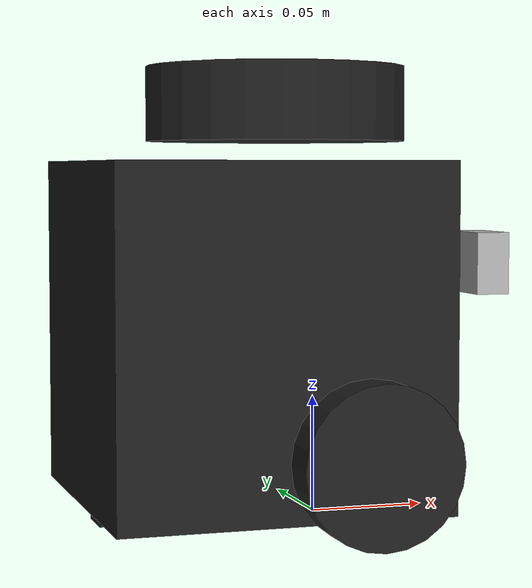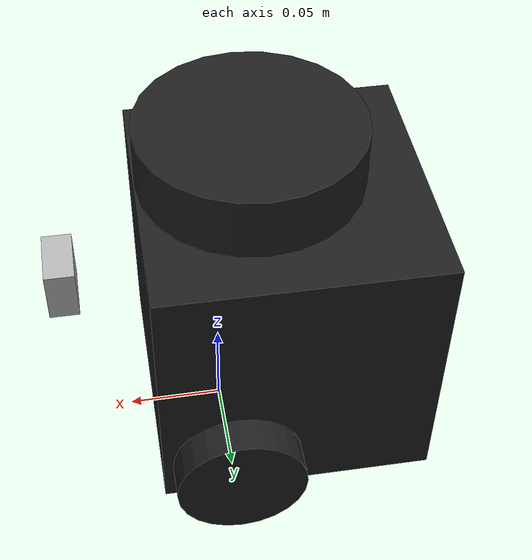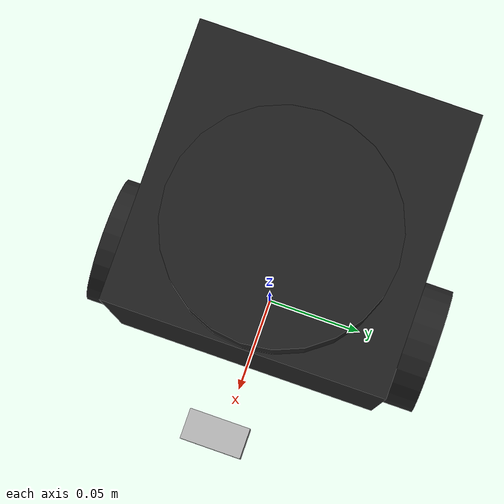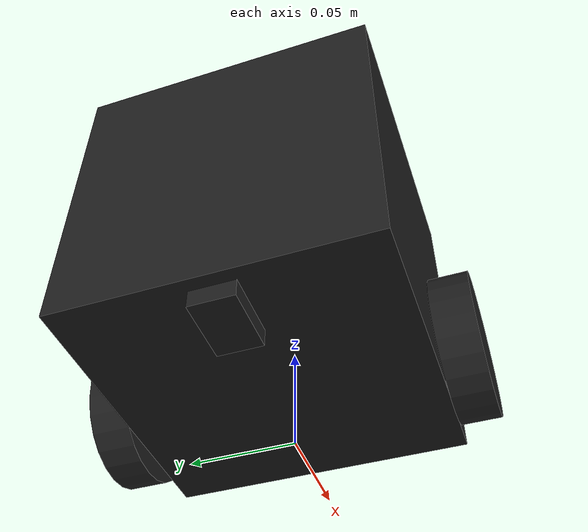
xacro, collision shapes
<?xml version="1.0" ?>
<robot name="turtlebot3_burger" xmlns:xacro="http://ros.org/wiki/xacro">
  <!--xacro:property name="hokuyo" value="false"/-->
  <xacro:include filename="$(find turtlebot3_description)/urdf/common_properties.xacro"/>
  <xacro:include filename="$(find turtlebot3_description)/urdf/turtlebot3_burger.gazebo.xacro"/>

  <link name="base_footprint"/>

  <joint name="base_joint" type="fixed">
    <parent link="base_footprint"/>
    <child link="base_link"/>
    <origin xyz="0.0 0.0 0.010" rpy="0 0 0"/>
  </joint>

  <link name="base_link">
    <visual>
      <origin xyz="-0.032 0 0.0" rpy="0 0 0"/>
      <geometry>
        <mesh filename="package://turtlebot3_description/meshes/bases/burger_base.stl" scale="0.001 0.001 0.001"/>
      </geometry>
      <material name="light_black"/>
    </visual>

    <collision>
      <origin xyz="-0.032 0 0.070" rpy="0 0 0"/>
      <geometry>
        <box size="0.140 0.140 0.143"/>
      </geometry>
    </collision>

    <inertial>
      <origin xyz="0 0 0" rpy="0 0 0"/>
      <mass value="8.2573504e-01"/>
      <inertia ixx="2.2124416e-03" ixy="-1.2294101e-05" ixz="3.4938785e-05"
               iyy="2.1193702e-03" iyz="-5.0120904e-06"
               izz="2.0064271e-03" />
    </inertial>
  </link>

  <joint name="wheel_left_joint" type="continuous">
    <parent link="base_link"/>
    <child link="wheel_left_link"/>
    <origin xyz="0.0 0.08 0.023" rpy="-1.57 0 0"/>
    <axis xyz="0 0 1"/>
  </joint>

  <link name="wheel_left_link">
    <visual>
      <origin xyz="0 0 0" rpy="1.57 0 0"/>
      <geometry>
        <mesh filename="package://turtlebot3_description/meshes/wheels/left_tire.stl" scale="0.001 0.001 0.001"/>
      </geometry>
      <material name="dark"/>
    </visual>

    <collision>
      <origin xyz="0 0 0" rpy="0 0 0"/>
      <geometry>
        <cylinder length="0.018" radius="0.033"/>
      </geometry>
    </collision>

    <inertial>
      <origin xyz="0 0 0" />
      <mass value="2.8498940e-02" />
      <inertia ixx="1.1175580e-05" ixy="-4.2369783e-11" ixz="-5.9381719e-09"
               iyy="1.1192413e-05" iyz="-1.4400107e-11"
               izz="2.0712558e-05" />
      </inertial>
  </link>

  <joint name="wheel_right_joint" type="continuous">
    <parent link="base_link"/>
    <child link="wheel_right_link"/>
    <origin xyz="0.0 -0.080 0.023" rpy="-1.57 0 0"/>
    <axis xyz="0 0 1"/>
  </joint>

  <link name="wheel_right_link">
    <visual>
      <origin xyz="0 0 0" rpy="1.57 0 0"/>
      <geometry>
        <mesh filename="package://turtlebot3_description/meshes/wheels/right_tire.stl" scale="0.001 0.001 0.001"/>
      </geometry>
      <material name="dark"/>
    </visual>

    <collision>
      <origin xyz="0 0 0" rpy="0 0 0"/>
      <geometry>
        <cylinder length="0.018" radius="0.033"/>
      </geometry>
    </collision>

    <inertial>
      <origin xyz="0 0 0" />
      <mass value="2.8498940e-02" />
      <inertia ixx="1.1175580e-05" ixy="-4.2369783e-11" ixz="-5.9381719e-09"
               iyy="1.1192413e-05" iyz="-1.4400107e-11"
               izz="2.0712558e-05" />
      </inertial>
  </link>

  <joint name="caster_back_joint" type="fixed">
    <parent link="base_link"/>
    <child link="caster_back_link"/>
    <origin xyz="-0.081 0 -0.004" rpy="-1.57 0 0"/>
  </joint>

  <link name="caster_back_link">
    <collision>
      <origin xyz="0 0.001 0" rpy="0 0 0"/>
      <geometry>
        <box size="0.030 0.009 0.020"/>
      </geometry>
    </collision>

    <inertial>
      <origin xyz="0 0 0" />
      <mass value="0.005" />
      <inertia ixx="0.001" ixy="0.0" ixz="0.0"
               iyy="0.001" iyz="0.0"
               izz="0.001" />
    </inertial>
  </link>

  <joint name="imu_joint" type="fixed">
    <parent link="base_link"/>
    <child link="imu_link"/>
    <origin xyz="-0.032 0 0.068" rpy="0 0 0"/>
  </joint>

  <link name="imu_link"/>

  <xacro:if value="${hokuyo == 1}">
    <joint name="scan_joint" type="fixed">
      <parent link="base_link"/>
      <child link="base_scan"/>
      <origin xyz="-0.032 0 0.140" rpy="0 0 0"/>
    </joint>

    <link name="base_scan">
      <visual>
        <origin xyz="0 0 0.0" rpy="0 0 0"/>
        <geometry>
          <mesh filename="package://turtlebot3_description/meshes/sensors/hokuyo3d.stl"/> <!--scale="0.001 0.001 0.001"/-->
        </geometry>
        <material name="dark"/>
      </visual>

      <collision>
        <origin xyz="0.015 0 -0.0065" rpy="0 0 0"/>
        <geometry>
          <box size="0.05 0.05 0.08"/>
        </geometry>
      </collision>

      <inertial>
        <mass value="0.00001" />
        <origin xyz="0 0 0" />
        <inertia ixx="0.000001" ixy="0.0" ixz="0.0"
                 iyy="0.000001" iyz="0.0"
                 izz="0.000001" />
      </inertial>
    </link>
  </xacro:if>>

  <xacro:if value="${hokuyo == 0}">
    <joint name="scan_joint" type="fixed">
      <parent link="base_link"/>
      <child link="base_scan"/>
      <origin xyz="-0.032 0 0.172" rpy="0 0 0"/>
    </joint>

    <link name="base_scan">
      <visual>
        <origin xyz="0 0 0.0" rpy="0 0 0"/>
        <geometry>
          <mesh filename="package://turtlebot3_description/meshes/sensors/lds.stl" scale="0.001 0.001 0.001"/>
        </geometry>
        <material name="dark"/>
      </visual>

      <collision>
        <origin xyz="0.015 0 -0.0065" rpy="0 0 0"/>
        <geometry>
          <cylinder length="0.0315" radius="0.055"/>
        </geometry>
      </collision>

      <inertial>
        <mass value="0.114" />
        <origin xyz="0 0 0" />
        <inertia ixx="0.001" ixy="0.0" ixz="0.0"
                 iyy="0.001" iyz="0.0"
                 izz="0.001" />
      </inertial>
    </link>
  </xacro:if>

<joint name="camera_joint" type="fixed">
    <origin xyz="0.073 -0.011 0.084" rpy="0 0 0"/>
    <parent link="base_link"/>
    <child link="camera_link"/>
  </joint>

  <link name="camera_link">
    <collision>
      <origin xyz="0.005 0.011 0.013" rpy="0 0 0"/>
      <geometry>
        <box size="0.015 0.030 0.027"/>
      </geometry>
    </collision>
  </link>

  <joint name="camera_rgb_joint" type="fixed">
    <origin xyz="0.003 0.011 0.009" rpy="0 0 0"/>
    <parent link="camera_link"/>
    <child link="camera_rgb_frame"/>
  </joint>
  <link name="camera_rgb_frame"/>

  <joint name="camera_rgb_optical_joint" type="fixed">
    <origin xyz="0 0 0" rpy="-1.57 0 -1.57"/>
    <parent link="camera_rgb_frame"/>
    <child link="camera_rgb_optical_frame"/>
  </joint>
  <link name="camera_rgb_optical_frame"/>

</robot>

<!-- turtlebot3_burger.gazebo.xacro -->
<robot name="turtlebot3_burger_sim" xmlns:xacro="http://ros.org/wiki/xacro">
  <xacro:arg name="laser_visual" default="true"/>
  <xacro:arg name="camera_visual" default="false"/>
  <xacro:arg name="imu_visual"   default="false"/>
  <xacro:arg name="is_using_hokuyo" default="0"/>

  <xacro:property name="hokuyo" value="$(arg is_using_hokuyo)"/>

  <gazebo reference="base_link">
    <material>Gazebo/DarkGrey</material>
  </gazebo>

  <gazebo reference="wheel_left_link">
    <mu1>0.1</mu1>
    <mu2>0.1</mu2>
    <kp>500000.0</kp>
    <kd>10.0</kd>
    <minDepth>0.001</minDepth>
    <maxVel>0.1</maxVel>
    <fdir1>1 0 0</fdir1>
    <material>Gazebo/FlatBlack</material>
  </gazebo>

  <gazebo reference="wheel_right_link">
    <mu1>0.1</mu1>
    <mu2>0.1</mu2>
    <kp>500000.0</kp>
    <kd>10.0</kd>
    <minDepth>0.001</minDepth>
    <maxVel>0.1</maxVel>
    <fdir1>1 0 0</fdir1>
    <material>Gazebo/FlatBlack</material>
  </gazebo>

  <gazebo reference="caster_back_link">
    <mu1>0.1</mu1>
    <mu2>0.1</mu2>
    <kp>1000000.0</kp>
    <kd>100.0</kd>
    <minDepth>0.001</minDepth>
    <maxVel>1.0</maxVel>
    <material>Gazebo/FlatBlack</material>
  </gazebo>

  <gazebo reference="imu_link">
    <sensor type="imu" name="imu">
      <always_on>true</always_on>
      <visualize>$(arg imu_visual)</visualize>
    </sensor>
    <material>Gazebo/FlatBlack</material>
  </gazebo>

  <gazebo>
    <plugin name="turtlebot3_burger_controller" filename="libgazebo_ros_diff_drive.so">
      <commandTopic>cmd_vel</commandTopic>
      <odometryTopic>odom</odometryTopic>
      <odometryFrame>odom</odometryFrame>
      <odometrySource>world</odometrySource>
      <publishOdomTF>true</publishOdomTF>
      <robotBaseFrame>base_footprint</robotBaseFrame>
      <publishWheelTF>false</publishWheelTF>
      <publishTf>true</publishTf>
      <publishWheelJointState>true</publishWheelJointState>
      <legacyMode>false</legacyMode>
      <updateRate>30</updateRate>
      <leftJoint>wheel_left_joint</leftJoint>
      <rightJoint>wheel_right_joint</rightJoint>
      <wheelSeparation>0.160</wheelSeparation>
      <wheelDiameter>0.066</wheelDiameter>
      <wheelAcceleration>1</wheelAcceleration>
      <wheelTorque>10</wheelTorque>
      <rosDebugLevel>na</rosDebugLevel>
    </plugin>
  </gazebo>

  <gazebo>
    <plugin name="imu_plugin" filename="libgazebo_ros_imu.so">
      <alwaysOn>true</alwaysOn>
      <bodyName>imu_link</bodyName>
      <frameName>imu_link</frameName>
      <topicName>imu</topicName>
      <serviceName>imu_service</serviceName>
      <gaussianNoise>0.0</gaussianNoise>
      <updateRate>0</updateRate>
      <imu>
        <noise>
          <type>gaussian</type>
          <rate>
            <mean>0.0</mean>
            <stddev>2e-4</stddev>
            <bias_mean>0.0000075</bias_mean>
            <bias_stddev>0.0000008</bias_stddev>
          </rate>
          <accel>
            <mean>0.0</mean>
            <stddev>1.7e-2</stddev>
            <bias_mean>0.1</bias_mean>
            <bias_stddev>0.001</bias_stddev>
          </accel>
        </noise>
      </imu>
    </plugin>
  </gazebo>

  <xacro:if value="${hokuyo == 0}">
    <gazebo reference="base_scan">
      <material>Gazebo/FlatBlack</material>
      <sensor type="ray" name="lds_lfcd_sensor">
        <pose>0 0 0 0 0 0</pose>
        <visualize>$(arg laser_visual)</visualize>
        <update_rate>5</update_rate>
        <ray>
          <scan>
            <horizontal>
              <samples>360</samples>
              <resolution>1</resolution>
              <min_angle>0.0</min_angle>
              <max_angle>6.28319</max_angle>
            </horizontal>
          </scan>
          <range>
            <min>0.120</min>
            <max>3.5</max>
            <resolution>0.015</resolution>
          </range>
          <noise>
            <type>gaussian</type>
            <mean>0.0</mean>
            <stddev>0.01</stddev>
          </noise>
        </ray>
        <plugin name="gazebo_ros_lds_lfcd_controller" filename="libgazebo_ros_laser.so">
          <topicName>scan</topicName>
          <frameName>base_scan</frameName>
        </plugin>
      </sensor>
    </gazebo>
  </xacro:if>

  <xacro:if value="${hokuyo == 1}">
    <gazebo reference="base_scan">
      <material>Gazebo/FlatBlack</material>
      <sensor type="gpu_ray" name="hokuyo3d">
        <pose>0 0 0 0 0 0</pose>
        <visualize>$(arg laser_visual)</visualize>
        <update_rate>5</update_rate>
        <ray>
          <scan>
            <horizontal>
              <samples>144</samples>
              <resolution>1.0</resolution>
              <min_angle>-1.83591184</min_angle>
              <max_angle>1.83591184</max_angle>
            </horizontal>
          </scan>
          <range>
            <min>0.10</min>
            <max>20.0</max>
            <resolution>0.01</resolution>
          </range>
          <noise>
            <type>gaussian</type>
            <mean>0.0</mean>
            <stddev>0.01</stddev>
          </noise>
        </ray>
        <plugin name="gazebo_ros_hokuyo3d_controller" filename="libgazebo_ros_gpu_laser.so">
          <topicName>scan</topicName>
          <frameName>base_scan</frameName>
        </plugin>
      </sensor>
    </gazebo>
  </xacro:if>

<!--link : https://www.raspberrypi.org/documentation/hardware/camera/-->
  <gazebo reference="camera_rgb_frame">
    <sensor type="camera" name="Pi Camera">
      <always_on>true</always_on>
      <visualize>$(arg camera_visual)</visualize>
      <camera>
          <horizontal_fov>1.085595</horizontal_fov>
          <image>
              <width>640</width>
              <height>480</height>
              <format>R8G8B8</format>
          </image>
          <clip>
              <near>0.03</near>
              <far>100</far>
          </clip>
      </camera>
      <plugin name="camera_controller" filename="libgazebo_ros_camera.so">
        <alwaysOn>true</alwaysOn>
        <updateRate>30.0</updateRate>
        <cameraName>camera</cameraName>
        <frameName>camera_rgb_optical_frame</frameName>
        <imageTopicName>rgb/image_raw</imageTopicName>
        <cameraInfoTopicName>rgb/camera_info</cameraInfoTopicName>
        <hackBaseline>0.07</hackBaseline>
        <distortionK1>0.0</distortionK1>
        <distortionK2>0.0</distortionK2>
        <distortionK3>0.0</distortionK3>
        <distortionT1>0.0</distortionT1>
        <distortionT2>0.0</distortionT2>
      </plugin>
    </sensor>
  </gazebo>

</robot>
